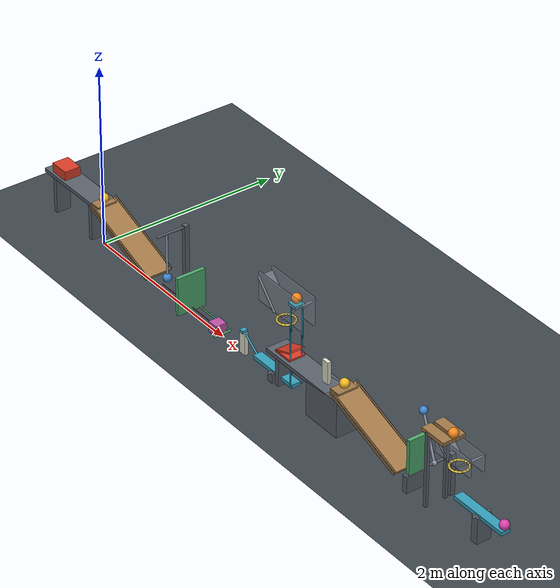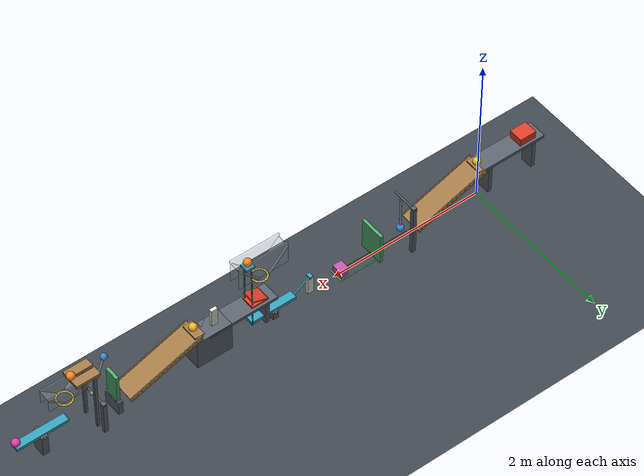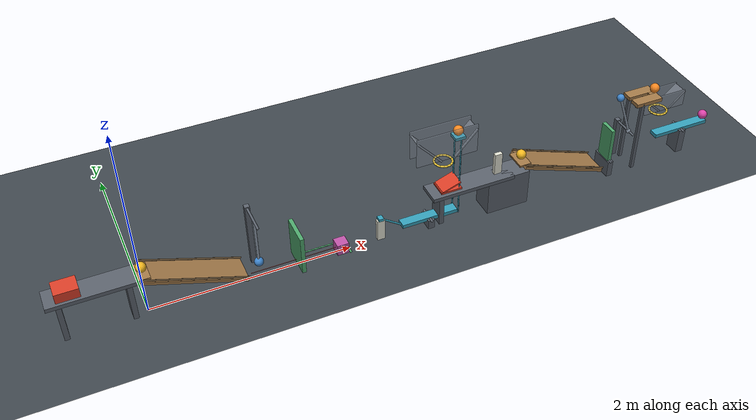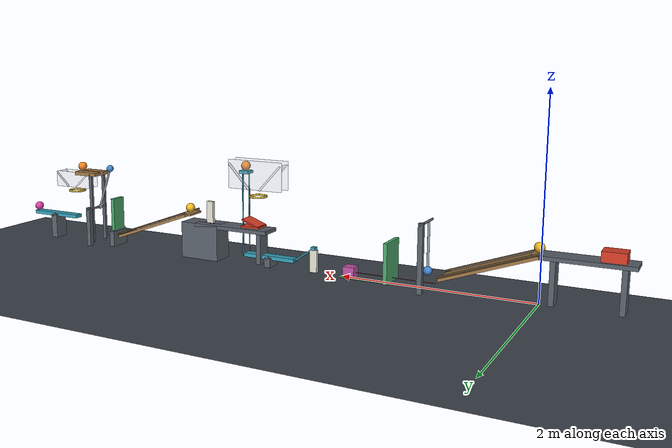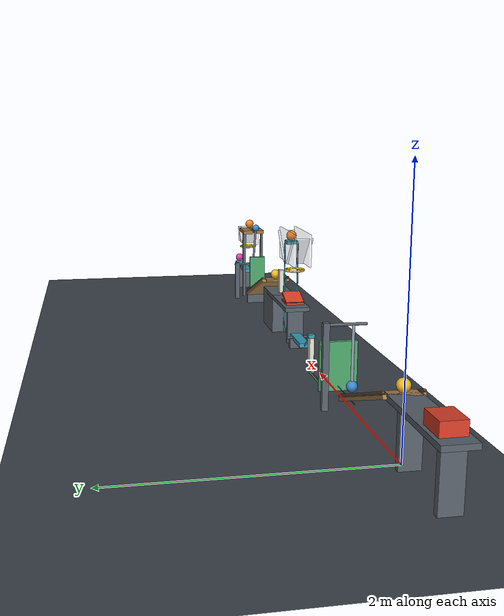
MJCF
<mujoco model="passive_chain_reaction">
  <compiler angle="degree" autolimits="true"/>
  <option timestep="0.002" gravity="0 0 -9.81" integrator="implicitfast" solver="Newton" iterations="100" tolerance="1e-10" cone="elliptic"/>
  <size njmax="4000" nconmax="1000"/>
  <visual>
    <global azimuth="110" elevation="-18"/>
    <headlight ambient="0.45 0.45 0.45" diffuse="0.75 0.75 0.75" specular="0.2 0.2 0.2"/>
  </visual>

  <worldbody>
    <light name="overhead" pos="3 -2 6" dir="0 0 -1" directional="true"/>
    <camera name="overview" pos="3.2 -8 3.2" xyaxes="1 0 0 0 0.32 0.947"/>
    <geom name="floor" type="plane" size="12 5 0.1" rgba="0.24 0.27 0.30 1" contype="1" conaffinity="1" condim="6" friction="0.68 0.005 0.001" solref="0.008 0.6901" solimp="0.95 0.99 0.001"/>

    <site name="block1_spring_anchor" pos="1.000000 0 0.060000" size="0.004" rgba="0.8 0.2 0.2 1"/>

    <body name="cart1_track" pos="-0.42 0 0.472020">
      <geom name="cart1_track_deck" type="box" size="0.43 0.12 0.02" contype="0" conaffinity="0" rgba="0.35 0.38 0.42 1"/>
      <geom name="cart1_track_leg_a" type="box" pos="-0.32 0 -0.226010" size="0.025 0.08 0.226010" contype="0" conaffinity="0" rgba="0.35 0.38 0.42 1"/>
      <geom name="cart1_track_leg_b" type="box" pos="0.30 0 -0.226010" size="0.025 0.08 0.226010" contype="0" conaffinity="0" rgba="0.35 0.38 0.42 1"/>
    </body>

    <body name="cart1" pos="-0.640000 0 0.542020">
      <inertial pos="0 0 0" mass="0.50" diaginertia="0.001766667 0.002433333 0.003366667"/>
      <joint name="cart1_slide" type="slide" axis="1 0 0" damping="0.20" range="0 0.80" solreflimit="0.008 1"/>
      <geom name="cart1_chassis" type="box" size="0.11 0.09 0.05" contype="3" conaffinity="3" condim="6" friction="0.68 0.005 0.001" solref="0.008 0.6901" solimp="0.95 0.99 0.001" rgba="0.85 0.24 0.15 1"/>
    </body>

    <body name="ramp1" pos="0.464716 0 0.306915" quat="0.984807753 0 0.173648178 0">
      <geom name="ramp1_surface" type="box" size="0.50 0.15 0.015" contype="1" conaffinity="1" condim="6" friction="0.68 0.005 0.001" solref="0.008 0.6901" solimp="0.95 0.99 0.001" rgba="0.63 0.47 0.28 1"/>
      <geom name="ramp1_rail_left" type="capsule" fromto="-0.5 -0.141 0.030 0.5 -0.141 0.030" size="0.009" contype="1" conaffinity="1" condim="6" friction="0.68 0.005 0.001" solref="0.008 0.6901" rgba="0.38 0.30 0.20 1"/>
      <geom name="ramp1_rail_right" type="capsule" fromto="-0.5 0.141 0.030 0.5 0.141 0.030" size="0.009" contype="1" conaffinity="1" condim="6" friction="0.68 0.005 0.001" solref="0.008 0.6901" rgba="0.38 0.30 0.20 1"/>
    </body>

    <body name="ramp1_start_perch" pos="0.0125 0 0.482020">
      <geom name="ramp1_start_perch_surface" type="box" size="0.0625 0.11 0.01" contype="1" conaffinity="1" condim="6" friction="0.68 0.005 0.001" solref="0.008 0.6901" solimp="0.95 0.99 0.001" rgba="0.63 0.47 0.28 1"/>
    </body>

    <body name="ball1" pos="0.020000 0 0.542020">
      <freejoint name="ball1_free"/>
      <geom name="ball1_sphere" type="sphere" size="0.05" mass="0.20" contype="3" conaffinity="3" condim="6" friction="0.68 0.005 0.001" solref="0.008 0.6901" solimp="0.95 0.99 0.001" rgba="0.95 0.72 0.12 1"/>
    </body>

    <body name="pendulum1_support" pos="1.084693 0 0">
      <geom name="pendulum1_support_post" type="box" pos="0 0.22 0.35" size="0.025 0.025 0.35" contype="0" conaffinity="0" rgba="0.35 0.38 0.42 1"/>
      <geom name="pendulum1_support_axle" type="capsule" fromto="0 -0.10 0.68 0 0.24 0.68" size="0.012" contype="0" conaffinity="0" rgba="0.35 0.38 0.42 1"/>
    </body>

    <body name="pendulum1" pos="1.084693 0 0.680000">
      <joint name="pendulum1_hinge" type="hinge" axis="0 -1 0" damping="0.04" range="0 40" solreflimit="0.008 1"/>
      <geom name="pendulum1_rod" type="capsule" fromto="0 0 0 0 0 -0.50" size="0.012" mass="0.30" contype="2" conaffinity="2" condim="6" friction="0.68 0.005 0.001" solref="0.008 0.6901" solimp="0.95 0.99 0.001" rgba="0.55 0.60 0.66 1"/>
      <geom name="pendulum1_bob" type="sphere" pos="0 0 -0.50" size="0.045" mass="0.05" contype="2" conaffinity="2" condim="6" friction="0.68 0.005 0.001" solref="0.008 0.6901" solimp="0.95 0.99 0.001" rgba="0.24 0.52 0.80 1"/>
    </body>

    <body name="door1" pos="1.471087 0 0.020000">
      <inertial pos="0 0 0.21" mass="0.45" diaginertia="0.010455 0.006675 0.003900"/>
      <joint name="door1_hinge" type="hinge" axis="0 1 0" damping="0.04" range="0 70" solreflimit="0.006 1"/>
      <geom name="door1_panel" type="box" pos="0 0 0.21" size="0.02 0.16 0.21" mass="0" contype="2" conaffinity="2" condim="6" friction="0.68 0.005 0.001" solref="0.008 0.6901" solimp="0.95 0.99 0.001" rgba="0.30 0.65 0.42 1"/>
      <geom name="door1_release_arm" type="capsule" fromto="0 0.10 0 0.510000 0.10 0" size="0.007" mass="0" contype="2" conaffinity="2" condim="6" friction="0.68 0.005 0.001" solref="0.008 0.6901" rgba="0.30 0.65 0.42 1"/>
      <geom name="door1_release_bar" type="capsule" fromto="0.510000 -0.08 0 0.510000 0.10 0" size="0.010" mass="0" contype="2" conaffinity="2" condim="6" friction="0.68 0.005 0.001" solref="0.008 0.6901" rgba="0.30 0.65 0.42 1"/>
    </body>

    <body name="block1" pos="1.911087 0 0.060000">
      <freejoint name="block1_free"/>
      <geom name="block1_cube" type="box" size="0.06 0.06 0.06" mass="0.35" contype="3" conaffinity="3" condim="6" friction="0.68 0.005 0.001" solref="0.008 0.6901" solimp="0.95 0.99 0.001" rgba="0.74 0.32 0.65 1"/>
      <site name="block1_spring_attachment" pos="0 0 0" size="0.004" rgba="0.8 0.2 0.2 1"/>
    </body>

    <body name="domino1" pos="2.331087 0 0.120000">
      <freejoint name="domino1_free"/>
      <geom name="domino1_tile" type="box" size="0.04 0.02 0.12" mass="0.25" contype="3" conaffinity="3" condim="6" friction="0.68 0.005 0.001" solref="0.008 0.6901" solimp="0.95 0.99 0.001" rgba="0.88 0.88 0.82 1"/>
    </body>

    <body name="lever1_support" pos="2.851087 0 0.05">
      <geom name="lever1_support_pedestal" type="box" size="0.035 0.08 0.05" contype="0" conaffinity="0" rgba="0.35 0.38 0.42 1"/>
      <geom name="lever1_support_axle" type="capsule" fromto="0 -0.09 0.05 0 0.09 0.05" size="0.012" contype="0" conaffinity="0" rgba="0.35 0.38 0.42 1"/>
    </body>

    <body name="lever1" pos="2.851087 0 0.100000">
      <inertial pos="0 0 0" mass="0.50" diaginertia="0.000483333 0.015066667 0.015416667"/>
      <joint name="lever1_hinge" type="hinge" axis="0 -1 0" damping="0.04" stiffness="2" springref="45" range="0 45" solreflimit="0.006 1"/>
      <geom name="lever1_beam" type="box" size="0.30 0.05 0.02" mass="0" contype="2" conaffinity="2" condim="6" friction="0.68 0.005 0.001" solref="0.008 0.6901" solimp="0.95 0.99 0.001" rgba="0.20 0.62 0.72 1"/>
      <geom name="lever1_latch_link" type="capsule" fromto="-0.30 0 0 -0.52 0 0.155" size="0.009" mass="0" contype="2" conaffinity="2" condim="6" friction="0.68 0.005 0.001" solref="0.008 0.6901" rgba="0.20 0.62 0.72 1"/>
      <geom name="lever1_latch_pad" type="box" pos="-0.52 0 0.155" size="0.025 0.03 0.015" mass="0" contype="2" conaffinity="2" condim="6" friction="0.68 0.005 0.001" solref="0.008 0.6901" solimp="0.95 0.99 0.001" rgba="0.20 0.62 0.72 1"/>
      <geom name="lever1_carrier_left" type="capsule" fromto="0.30 -0.066 0 0.30 -0.066 0.89" size="0.007" mass="0" contype="2" conaffinity="2" condim="6" friction="0.68 0.005 0.001" solref="0.008 0.6901" rgba="0.20 0.62 0.72 1"/>
      <geom name="lever1_carrier_right" type="capsule" fromto="0.30 0.066 0 0.30 0.066 0.89" size="0.007" mass="0" contype="2" conaffinity="2" condim="6" friction="0.68 0.005 0.001" solref="0.008 0.6901" rgba="0.20 0.62 0.72 1"/>
      <geom name="lever1_launch_plate" type="box" pos="0.30 0 0.905" size="0.055 0.055 0.015" mass="0" contype="2" conaffinity="2" condim="6" friction="0.68 0.005 0.001" solref="0.008 0.6901" solimp="0.95 0.99 0.001" rgba="0.20 0.62 0.72 1"/>
    </body>

    <body name="ball2" pos="3.151087 0 1.070000">
      <freejoint name="ball2_free"/>
      <geom name="ball2_sphere" type="sphere" size="0.05" mass="0.20" contype="3" conaffinity="3" condim="6" friction="0.68 0.005 0.001" solref="0.008 0.6901" solimp="0.95 0.99 0.001" rgba="0.95 0.52 0.12 1"/>
    </body>

    <body name="ring1" pos="3.000000 0 0.750000">
      <geom name="ring1_segment_01" type="capsule" fromto="0.091763 0 0 0.084779 0.035116 0" size="0.01" contype="1" conaffinity="1" condim="6" friction="0.68 0.005 0.001" solref="0.008 0.6901" rgba="0.92 0.78 0.22 1"/>
      <geom name="ring1_segment_02" type="capsule" fromto="0.084779 0.035116 0 0.064886 0.064886 0" size="0.01" contype="1" conaffinity="1" condim="6" friction="0.68 0.005 0.001" solref="0.008 0.6901" rgba="0.92 0.78 0.22 1"/>
      <geom name="ring1_segment_03" type="capsule" fromto="0.064886 0.064886 0 0.035116 0.084779 0" size="0.01" contype="1" conaffinity="1" condim="6" friction="0.68 0.005 0.001" solref="0.008 0.6901" rgba="0.92 0.78 0.22 1"/>
      <geom name="ring1_segment_04" type="capsule" fromto="0.035116 0.084779 0 0 0.091763 0" size="0.01" contype="1" conaffinity="1" condim="6" friction="0.68 0.005 0.001" solref="0.008 0.6901" rgba="0.92 0.78 0.22 1"/>
      <geom name="ring1_segment_05" type="capsule" fromto="0 0.091763 0 -0.035116 0.084779 0" size="0.01" contype="1" conaffinity="1" condim="6" friction="0.68 0.005 0.001" solref="0.008 0.6901" rgba="0.92 0.78 0.22 1"/>
      <geom name="ring1_segment_06" type="capsule" fromto="-0.035116 0.084779 0 -0.064886 0.064886 0" size="0.01" contype="1" conaffinity="1" condim="6" friction="0.68 0.005 0.001" solref="0.008 0.6901" rgba="0.92 0.78 0.22 1"/>
      <geom name="ring1_segment_07" type="capsule" fromto="-0.064886 0.064886 0 -0.084779 0.035116 0" size="0.01" contype="1" conaffinity="1" condim="6" friction="0.68 0.005 0.001" solref="0.008 0.6901" rgba="0.92 0.78 0.22 1"/>
      <geom name="ring1_segment_08" type="capsule" fromto="-0.084779 0.035116 0 -0.091763 0 0" size="0.01" contype="1" conaffinity="1" condim="6" friction="0.68 0.005 0.001" solref="0.008 0.6901" rgba="0.92 0.78 0.22 1"/>
      <geom name="ring1_segment_09" type="capsule" fromto="-0.091763 0 0 -0.084779 -0.035116 0" size="0.01" contype="1" conaffinity="1" condim="6" friction="0.68 0.005 0.001" solref="0.008 0.6901" rgba="0.92 0.78 0.22 1"/>
      <geom name="ring1_segment_10" type="capsule" fromto="-0.084779 -0.035116 0 -0.064886 -0.064886 0" size="0.01" contype="1" conaffinity="1" condim="6" friction="0.68 0.005 0.001" solref="0.008 0.6901" rgba="0.92 0.78 0.22 1"/>
      <geom name="ring1_segment_11" type="capsule" fromto="-0.064886 -0.064886 0 -0.035116 -0.084779 0" size="0.01" contype="1" conaffinity="1" condim="6" friction="0.68 0.005 0.001" solref="0.008 0.6901" rgba="0.92 0.78 0.22 1"/>
      <geom name="ring1_segment_12" type="capsule" fromto="-0.035116 -0.084779 0 0 -0.091763 0" size="0.01" contype="1" conaffinity="1" condim="6" friction="0.68 0.005 0.001" solref="0.008 0.6901" rgba="0.92 0.78 0.22 1"/>
      <geom name="ring1_segment_13" type="capsule" fromto="0 -0.091763 0 0.035116 -0.084779 0" size="0.01" contype="1" conaffinity="1" condim="6" friction="0.68 0.005 0.001" solref="0.008 0.6901" rgba="0.92 0.78 0.22 1"/>
      <geom name="ring1_segment_14" type="capsule" fromto="0.035116 -0.084779 0 0.064886 -0.064886 0" size="0.01" contype="1" conaffinity="1" condim="6" friction="0.68 0.005 0.001" solref="0.008 0.6901" rgba="0.92 0.78 0.22 1"/>
      <geom name="ring1_segment_15" type="capsule" fromto="0.064886 -0.064886 0 0.084779 -0.035116 0" size="0.01" contype="1" conaffinity="1" condim="6" friction="0.68 0.005 0.001" solref="0.008 0.6901" rgba="0.92 0.78 0.22 1"/>
      <geom name="ring1_segment_16" type="capsule" fromto="0.084779 -0.035116 0 0.091763 0 0" size="0.01" contype="1" conaffinity="1" condim="6" friction="0.68 0.005 0.001" solref="0.008 0.6901" rgba="0.92 0.78 0.22 1"/>
      <geom name="ring1_capture_left" type="box" pos="-0.1865 0 0.215" euler="0 47.55 0" size="0.183 0.10 0.008" contype="1" conaffinity="1" condim="6" friction="0.68 0.005 0.001" solref="0.008 0.6901" rgba="0.70 0.73 0.78 0.45"/>
      <geom name="ring1_capture_right" type="box" pos="0.1865 0 0.215" euler="0 -47.55 0" size="0.183 0.10 0.008" contype="1" conaffinity="1" condim="6" friction="0.68 0.005 0.001" solref="0.008 0.6901" rgba="0.70 0.73 0.78 0.45"/>
      <geom name="ring1_capture_front" type="box" pos="0 -0.075 0.235" size="0.32 0.008 0.155" contype="1" conaffinity="1" condim="6" friction="0.68 0.005 0.001" solref="0.008 0.6901" rgba="0.70 0.73 0.78 0.25"/>
      <geom name="ring1_capture_back" type="box" pos="0 0.075 0.235" size="0.32 0.008 0.155" contype="1" conaffinity="1" condim="6" friction="0.68 0.005 0.001" solref="0.008 0.6901" rgba="0.70 0.73 0.78 0.25"/>
    </body>

    <body name="cart2_track" pos="3.30 0 0.380">
      <geom name="cart2_track_deck" type="box" size="0.45 0.12 0.02" contype="0" conaffinity="0" rgba="0.35 0.38 0.42 1"/>
      <geom name="cart2_track_leg_a" type="box" pos="-0.34 0 -0.18" size="0.025 0.08 0.18" contype="0" conaffinity="0" rgba="0.35 0.38 0.42 1"/>
      <geom name="cart2_track_leg_b" type="box" pos="0.34 0 -0.18" size="0.025 0.08 0.18" contype="0" conaffinity="0" rgba="0.35 0.38 0.42 1"/>
    </body>

    <body name="cart2" pos="3.060000 0 0.456120">
      <inertial pos="0 0 0" mass="0.50" diaginertia="0.001766667 0.002433333 0.003366667"/>
      <joint name="cart2_slide" type="slide" axis="1 0 0" damping="0.20" range="0 0.55" solreflimit="0.008 1"/>
      <geom name="cart2_base" type="box" pos="0 0 -0.04" size="0.11 0.09 0.01" mass="0" contype="3" conaffinity="3" condim="6" friction="0.68 0.005 0.001" solref="0.008 0.6901" solimp="0.95 0.99 0.001" rgba="0.85 0.24 0.15 1"/>
      <geom name="cart2_impact_deck" type="box" pos="0 0 0.004" euler="0 -20 0" size="0.103 0.09 0.008" mass="0" contype="3" conaffinity="3" condim="6" friction="0.68 0.005 0.001" solref="0.008 0.6901" solimp="0.95 0.99 0.001" rgba="0.85 0.24 0.15 1"/>
    </body>

    <body name="domino2_platform" pos="3.69 0 0.20">
      <geom name="domino2_platform_block" type="box" size="0.23 0.12 0.20" contype="1" conaffinity="1" condim="6" friction="0.68 0.005 0.001" solref="0.008 0.6901" rgba="0.35 0.38 0.42 1"/>
    </body>

    <body name="domino2" pos="3.610000 0 0.520000">
      <freejoint name="domino2_free"/>
      <geom name="domino2_tile" type="box" size="0.04 0.02 0.12" mass="0.25" contype="3" conaffinity="3" condim="6" friction="0.68 0.005 0.001" solref="0.008 0.6901" solimp="0.95 0.99 0.001" rgba="0.88 0.88 0.82 1"/>
    </body>

    <body name="ramp2" pos="4.324716 0 0.306915" quat="0.984807753 0 0.173648178 0">
      <geom name="ramp2_surface" type="box" size="0.50 0.15 0.015" contype="1" conaffinity="1" condim="6" friction="0.68 0.005 0.001" solref="0.008 0.6901" solimp="0.95 0.99 0.001" rgba="0.63 0.47 0.28 1"/>
      <geom name="ramp2_rail_left" type="capsule" fromto="-0.5 -0.141 0.030 0.5 -0.141 0.030" size="0.009" contype="1" conaffinity="1" condim="6" friction="0.68 0.005 0.001" solref="0.008 0.6901" rgba="0.38 0.30 0.20 1"/>
      <geom name="ramp2_rail_right" type="capsule" fromto="-0.5 0.141 0.030 0.5 0.141 0.030" size="0.009" contype="1" conaffinity="1" condim="6" friction="0.68 0.005 0.001" solref="0.008 0.6901" rgba="0.38 0.30 0.20 1"/>
    </body>

    <body name="ramp2_start_perch" pos="3.8725 0 0.482020">
      <geom name="ramp2_start_perch_surface" type="box" size="0.0625 0.11 0.01" contype="1" conaffinity="1" condim="6" friction="0.68 0.005 0.001" solref="0.008 0.6901" solimp="0.95 0.99 0.001" rgba="0.63 0.47 0.28 1"/>
    </body>

    <body name="ball3" pos="3.880000 0 0.542020">
      <freejoint name="ball3_free"/>
      <geom name="ball3_sphere" type="sphere" size="0.05" mass="0.20" contype="3" conaffinity="3" condim="6" friction="0.68 0.005 0.001" solref="0.008 0.6901" solimp="0.95 0.99 0.001" rgba="0.95 0.72 0.12 1"/>
    </body>

    <body name="flap1_support" pos="4.919693 0 0.09">
      <geom name="flap1_support_pedestal" type="box" size="0.03 0.12 0.09" contype="0" conaffinity="0" rgba="0.35 0.38 0.42 1"/>
      <geom name="flap1_support_axle" type="capsule" fromto="0 -0.12 0.09 0 0.12 0.09" size="0.01" contype="0" conaffinity="0" rgba="0.35 0.38 0.42 1"/>
    </body>

    <body name="flap1" pos="4.919693 0 0.180000">
      <inertial pos="0 0 0.19" mass="0.28" diaginertia="0.004125333 0.003406667 0.000793333"/>
      <joint name="flap1_hinge" type="hinge" axis="0 1 0" damping="0.04" range="0 60" solreflimit="0.006 1"/>
      <geom name="flap1_panel" type="box" pos="0 0 0.19" size="0.02 0.09 0.19" mass="0" contype="2" conaffinity="2" condim="6" friction="0.68 0.005 0.001" solref="0.008 0.6901" solimp="0.95 0.99 0.001" rgba="0.30 0.65 0.42 1"/>
    </body>

    <body name="pendulum2_support" pos="5.178900 0 0">
      <geom name="pendulum2_support_post" type="box" pos="0 0.20 0.225" size="0.025 0.025 0.225" contype="0" conaffinity="0" rgba="0.35 0.38 0.42 1"/>
      <geom name="pendulum2_support_axle" type="capsule" fromto="0 -0.08 0.43 0 0.22 0.43" size="0.012" contype="0" conaffinity="0" rgba="0.35 0.38 0.42 1"/>
    </body>

    <body name="pendulum2" pos="5.178900 0 0.430000">
      <joint name="pendulum2_hinge" type="hinge" axis="0 1 0" damping="0.04" frictionloss="0.075" range="0 38" solreflimit="0.006 1"/>
      <geom name="pendulum2_hub" type="sphere" size="0.025" mass="0.30" contype="2" conaffinity="2" condim="6" friction="0.68 0.005 0.001" solref="0.008 0.6901" rgba="0.55 0.60 0.66 1"/>
      <geom name="pendulum2_rod" type="capsule" fromto="0 0 0 -0.171010072 0 0.469846310" size="0.012" mass="0.02" contype="2" conaffinity="2" condim="6" friction="0.68 0.005 0.001" solref="0.008 0.6901" solimp="0.95 0.99 0.001" rgba="0.55 0.60 0.66 1"/>
      <geom name="pendulum2_bob" type="sphere" pos="-0.171010072 0 0.469846310" size="0.04" mass="0.03" contype="2" conaffinity="2" condim="6" friction="0.68 0.005 0.001" solref="0.008 0.6901" solimp="0.95 0.99 0.001" rgba="0.24 0.52 0.80 1"/>
    </body>

    <body name="shelf1" pos="5.288238 0 0.830000">
      <geom name="shelf1_left_strip" type="box" pos="0 -0.071 0" size="0.15 0.054 0.02" contype="3" conaffinity="3" condim="6" friction="0.68 0.005 0.001" solref="0.008 0.6901" solimp="0.95 0.99 0.001" rgba="0.63 0.47 0.28 1"/>
      <geom name="shelf1_right_strip" type="box" pos="0 0.071 0" size="0.15 0.054 0.02" contype="3" conaffinity="3" condim="6" friction="0.68 0.005 0.001" solref="0.008 0.6901" solimp="0.95 0.99 0.001" rgba="0.63 0.47 0.28 1"/>
      <geom name="shelf1_end_bridge" type="box" pos="0.11 0 0" size="0.04 0.017 0.02" contype="3" conaffinity="3" condim="6" friction="0.68 0.005 0.001" solref="0.008 0.6901" solimp="0.95 0.99 0.001" rgba="0.63 0.47 0.28 1"/>
      <geom name="shelf1_support_left" type="box" pos="-0.08 -0.11 -0.405" size="0.018 0.015 0.405" contype="0" conaffinity="0" rgba="0.35 0.38 0.42 1"/>
      <geom name="shelf1_support_right" type="box" pos="-0.08 0.11 -0.405" size="0.018 0.015 0.405" contype="0" conaffinity="0" rgba="0.35 0.38 0.42 1"/>
    </body>

    <body name="ball4" pos="5.423238 0 0.900000">
      <freejoint name="ball4_free"/>
      <geom name="ball4_sphere" type="sphere" size="0.05" mass="0.20" contype="3" conaffinity="3" condim="6" friction="0.68 0.005 0.001" solref="0.008 0.6901" solimp="0.95 0.99 0.001" rgba="0.95 0.52 0.12 1"/>
    </body>

    <body name="ring2" pos="5.520000 0 0.600000">
      <geom name="ring2_segment_01" type="capsule" fromto="0.091763 0 0 0.084779 0.035116 0" size="0.01" contype="1" conaffinity="1" condim="6" friction="0.68 0.005 0.001" solref="0.008 0.6901" rgba="0.92 0.78 0.22 1"/>
      <geom name="ring2_segment_02" type="capsule" fromto="0.084779 0.035116 0 0.064886 0.064886 0" size="0.01" contype="1" conaffinity="1" condim="6" friction="0.68 0.005 0.001" solref="0.008 0.6901" rgba="0.92 0.78 0.22 1"/>
      <geom name="ring2_segment_03" type="capsule" fromto="0.064886 0.064886 0 0.035116 0.084779 0" size="0.01" contype="1" conaffinity="1" condim="6" friction="0.68 0.005 0.001" solref="0.008 0.6901" rgba="0.92 0.78 0.22 1"/>
      <geom name="ring2_segment_04" type="capsule" fromto="0.035116 0.084779 0 0 0.091763 0" size="0.01" contype="1" conaffinity="1" condim="6" friction="0.68 0.005 0.001" solref="0.008 0.6901" rgba="0.92 0.78 0.22 1"/>
      <geom name="ring2_segment_05" type="capsule" fromto="0 0.091763 0 -0.035116 0.084779 0" size="0.01" contype="1" conaffinity="1" condim="6" friction="0.68 0.005 0.001" solref="0.008 0.6901" rgba="0.92 0.78 0.22 1"/>
      <geom name="ring2_segment_06" type="capsule" fromto="-0.035116 0.084779 0 -0.064886 0.064886 0" size="0.01" contype="1" conaffinity="1" condim="6" friction="0.68 0.005 0.001" solref="0.008 0.6901" rgba="0.92 0.78 0.22 1"/>
      <geom name="ring2_segment_07" type="capsule" fromto="-0.064886 0.064886 0 -0.084779 0.035116 0" size="0.01" contype="1" conaffinity="1" condim="6" friction="0.68 0.005 0.001" solref="0.008 0.6901" rgba="0.92 0.78 0.22 1"/>
      <geom name="ring2_segment_08" type="capsule" fromto="-0.084779 0.035116 0 -0.091763 0 0" size="0.01" contype="1" conaffinity="1" condim="6" friction="0.68 0.005 0.001" solref="0.008 0.6901" rgba="0.92 0.78 0.22 1"/>
      <geom name="ring2_segment_09" type="capsule" fromto="-0.091763 0 0 -0.084779 -0.035116 0" size="0.01" contype="1" conaffinity="1" condim="6" friction="0.68 0.005 0.001" solref="0.008 0.6901" rgba="0.92 0.78 0.22 1"/>
      <geom name="ring2_segment_10" type="capsule" fromto="-0.084779 -0.035116 0 -0.064886 -0.064886 0" size="0.01" contype="1" conaffinity="1" condim="6" friction="0.68 0.005 0.001" solref="0.008 0.6901" rgba="0.92 0.78 0.22 1"/>
      <geom name="ring2_segment_11" type="capsule" fromto="-0.064886 -0.064886 0 -0.035116 -0.084779 0" size="0.01" contype="1" conaffinity="1" condim="6" friction="0.68 0.005 0.001" solref="0.008 0.6901" rgba="0.92 0.78 0.22 1"/>
      <geom name="ring2_segment_12" type="capsule" fromto="-0.035116 -0.084779 0 0 -0.091763 0" size="0.01" contype="1" conaffinity="1" condim="6" friction="0.68 0.005 0.001" solref="0.008 0.6901" rgba="0.92 0.78 0.22 1"/>
      <geom name="ring2_segment_13" type="capsule" fromto="0 -0.091763 0 0.035116 -0.084779 0" size="0.01" contype="1" conaffinity="1" condim="6" friction="0.68 0.005 0.001" solref="0.008 0.6901" rgba="0.92 0.78 0.22 1"/>
      <geom name="ring2_segment_14" type="capsule" fromto="0.035116 -0.084779 0 0.064886 -0.064886 0" size="0.01" contype="1" conaffinity="1" condim="6" friction="0.68 0.005 0.001" solref="0.008 0.6901" rgba="0.92 0.78 0.22 1"/>
      <geom name="ring2_segment_15" type="capsule" fromto="0.064886 -0.064886 0 0.084779 -0.035116 0" size="0.01" contype="1" conaffinity="1" condim="6" friction="0.68 0.005 0.001" solref="0.008 0.6901" rgba="0.92 0.78 0.22 1"/>
      <geom name="ring2_segment_16" type="capsule" fromto="0.084779 -0.035116 0 0.091763 0 0" size="0.01" contype="1" conaffinity="1" condim="6" friction="0.68 0.005 0.001" solref="0.008 0.6901" rgba="0.92 0.78 0.22 1"/>
      <geom name="ring2_capture_left" type="box" pos="-0.147 0 0.14" euler="0 43.0 0" size="0.120 0.09 0.008" contype="1" conaffinity="1" condim="6" friction="0.68 0.005 0.001" solref="0.008 0.6901" rgba="0.70 0.73 0.78 0.45"/>
      <geom name="ring2_capture_right" type="box" pos="0.147 0 0.14" euler="0 -43.0 0" size="0.120 0.09 0.008" contype="1" conaffinity="1" condim="6" friction="0.68 0.005 0.001" solref="0.008 0.6901" rgba="0.70 0.73 0.78 0.45"/>
      <geom name="ring2_capture_front" type="box" pos="0 -0.075 0.14" size="0.24 0.008 0.09" contype="1" conaffinity="1" condim="6" friction="0.68 0.005 0.001" solref="0.008 0.6901" rgba="0.70 0.73 0.78 0.25"/>
      <geom name="ring2_capture_back" type="box" pos="0 0.075 0.14" size="0.24 0.008 0.09" contype="1" conaffinity="1" condim="6" friction="0.68 0.005 0.001" solref="0.008 0.6901" rgba="0.70 0.73 0.78 0.25"/>
    </body>

    <body name="seesaw1_support" pos="5.845000 0 0.14">
      <geom name="seesaw1_support_pedestal" type="box" size="0.04 0.08 0.14" contype="0" conaffinity="0" rgba="0.35 0.38 0.42 1"/>
      <geom name="seesaw1_support_axle" type="capsule" fromto="0 -0.09 0.14 0 0.09 0.14" size="0.012" contype="0" conaffinity="0" rgba="0.35 0.38 0.42 1"/>
    </body>

    <body name="seesaw1" pos="5.845000 0 0.280000">
      <joint name="seesaw1_hinge" type="hinge" axis="0 -1 0" damping="0.04" range="0 42" solreflimit="0.006 1"/>
      <geom name="seesaw1_beam" type="box" size="0.325 0.05 0.02" mass="0.55" contype="2" conaffinity="2" condim="6" friction="0.68 0.005 0.001" solref="0.008 0.6901" solimp="0.95 0.99 0.001" rgba="0.20 0.62 0.72 1"/>
    </body>

    <body name="ball5" pos="6.150000 0 0.350000">
      <freejoint name="ball5_free"/>
      <geom name="ball5_sphere" type="sphere" size="0.05" mass="0.20" contype="3" conaffinity="3" condim="6" friction="0.68 0.005 0.001" solref="0.008 0.6901" solimp="0.95 0.99 0.001" rgba="0.85 0.25 0.65 1"/>
    </body>
  </worldbody>

  <tendon>
    <fixed name="cart1_unilateral_spring" stiffness="18" damping="0" springlength="0.20 10">
      <joint joint="cart1_slide" coef="1"/>
    </fixed>
    <spatial name="block1_auxiliary_spring" stiffness="18" damping="0" springlength="1.271087 10" width="0.003" rgba="0.8 0.25 0.2 0.5">
      <site site="block1_spring_anchor"/>
      <site site="block1_spring_attachment"/>
    </spatial>
  </tendon>

  <keyframe>
    <key name="start"/>
  </keyframe>
</mujoco>
